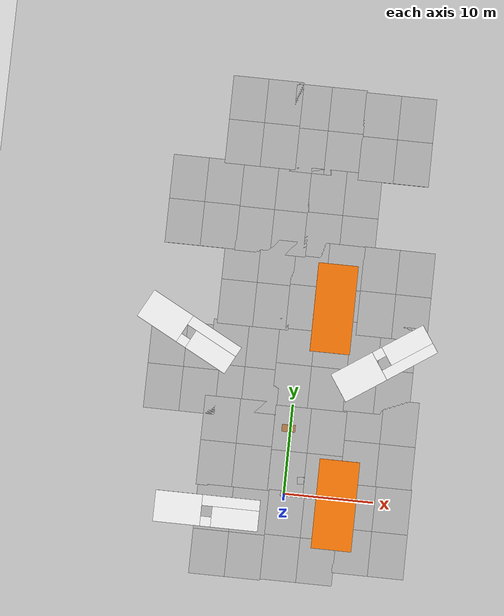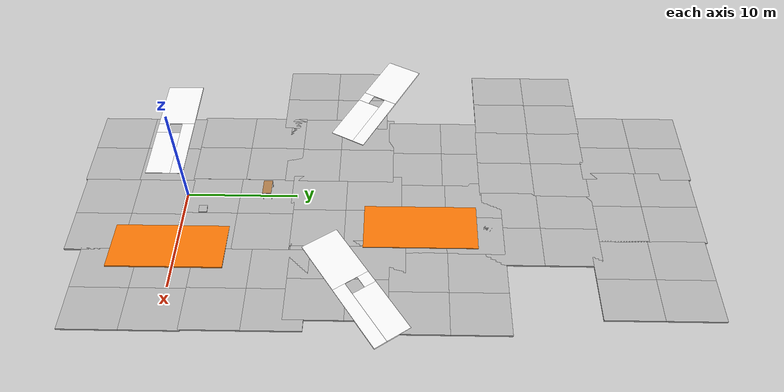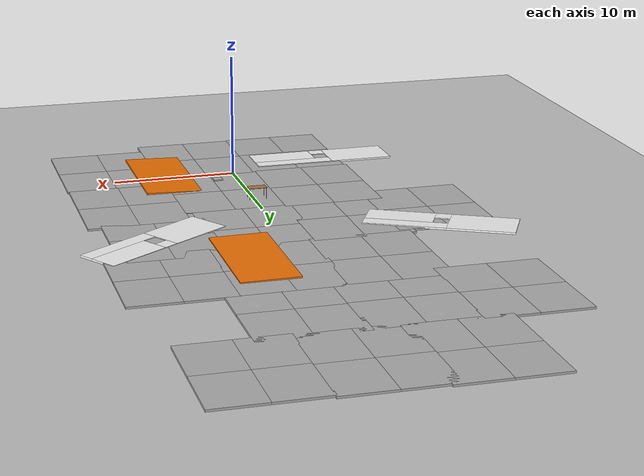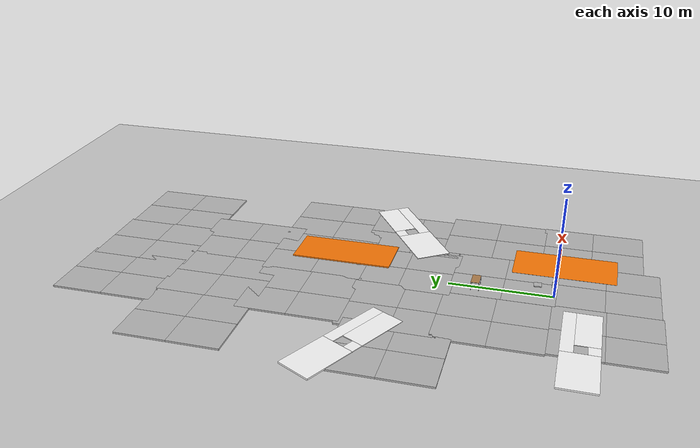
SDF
<sdf version="1.5">
 <world name="default">
  <model name="ground_plane">
   <static>1</static>
   <link name="link">
    <collision name="collision">
     <geometry><plane><normal>0 0 1</normal><size>100 100</size></plane></geometry>
     <surface><friction><ode><mu>100</mu><mu2>50</mu2></ode></friction></surface>
    </collision>
    <visual name="visual">
     <cast_shadows>0</cast_shadows>
     <geometry><plane><normal>0 0 1</normal><size>100 100</size></plane></geometry>
     <material>
      <script><uri>file://media/materials/scripts/gazebo.material</uri><name>Gazebo/Grey</name></script>
     </material>
    </visual>
   </link>
  </model>
  <model name="mud_box">
   <static>1</static>
   <link name="link">
    <collision name="collision"><geometry><box><size>8 10 0.2</size></box></geometry></collision>
    <visual name="visual_1">
     <pose>-2 2.5 0 0 -0 0</pose>
     <cast_shadows>0</cast_shadows>
     <geometry><box><size>4 5 0.2</size></box></geometry>
     <material>
      <script>
       <uri>model://mud_box/materials/scripts</uri>
       <uri>model://mud_box/materials/textures</uri>
       <name>vrc/mud</name>
      </script>
     </material>
    </visual>
    <visual name="visual_2">
     <pose>2 2.5 0 0 -0 0</pose>
     <cast_shadows>0</cast_shadows>
     <geometry><box><size>4 5 0.2</size></box></geometry>
     <material>
      <script>
       <uri>model://mud_box/materials/scripts</uri>
       <uri>model://mud_box/materials/textures</uri>
       <name>vrc/mud</name>
      </script>
     </material>
    </visual>
    <visual name="visual_3">
     <pose>2 -2.5 0 0 -0 0</pose>
     <cast_shadows>0</cast_shadows>
     <geometry><box><size>4 5 0.2</size></box></geometry>
     <material>
      <script>
       <uri>model://mud_box/materials/scripts</uri>
       <uri>model://mud_box/materials/textures</uri>
       <name>vrc/mud</name>
      </script>
     </material>
    </visual>
    <visual name="visual_4">
     <pose>-2 -2.5 0 0 -0 0</pose>
     <cast_shadows>0</cast_shadows>
     <geometry><box><size>4 5 0.2</size></box></geometry>
     <material>
      <script>
       <uri>model://mud_box/materials/scripts</uri>
       <uri>model://mud_box/materials/textures</uri>
       <name>vrc/mud</name>
      </script>
     </material>
    </visual>
   </link>
   <pose>-5.68226 -4.79877 0 0 -0 0</pose>
  </model>
  <model name="mud_box_0">
   <static>1</static>
   <link name="link">
    <collision name="collision"><geometry><box><size>8 10 0.2</size></box></geometry></collision>
    <visual name="visual_1">
     <pose>-2 2.5 0 0 -0 0</pose>
     <cast_shadows>0</cast_shadows>
     <geometry><box><size>4 5 0.2</size></box></geometry>
     <material>
      <script>
       <uri>model://mud_box/materials/scripts</uri>
       <uri>model://mud_box/materials/textures</uri>
       <name>vrc/mud</name>
      </script>
     </material>
    </visual>
    <visual name="visual_2">
     <pose>2 2.5 0 0 -0 0</pose>
     <cast_shadows>0</cast_shadows>
     <geometry><box><size>4 5 0.2</size></box></geometry>
     <material>
      <script>
       <uri>model://mud_box/materials/scripts</uri>
       <uri>model://mud_box/materials/textures</uri>
       <name>vrc/mud</name>
      </script>
     </material>
    </visual>
    <visual name="visual_3">
     <pose>2 -2.5 0 0 -0 0</pose>
     <cast_shadows>0</cast_shadows>
     <geometry><box><size>4 5 0.2</size></box></geometry>
     <material>
      <script>
       <uri>model://mud_box/materials/scripts</uri>
       <uri>model://mud_box/materials/textures</uri>
       <name>vrc/mud</name>
      </script>
     </material>
    </visual>
    <visual name="visual_4">
     <pose>-2 -2.5 0 0 -0 0</pose>
     <cast_shadows>0</cast_shadows>
     <geometry><box><size>4 5 0.2</size></box></geometry>
     <material>
      <script>
       <uri>model://mud_box/materials/scripts</uri>
       <uri>model://mud_box/materials/textures</uri>
       <name>vrc/mud</name>
      </script>
     </material>
    </visual>
   </link>
   <pose>-5.88818 5.07948 0 0 -0 0</pose>
  </model>
  <model name="mud_box_3">
   <static>1</static>
   <link name="link">
    <collision name="collision"><geometry><box><size>8 10 0.2</size></box></geometry></collision>
    <visual name="visual_1">
     <pose>-2 2.5 0 0 -0 0</pose>
     <cast_shadows>0</cast_shadows>
     <geometry><box><size>4 5 0.2</size></box></geometry>
     <material>
      <script>
       <uri>model://mud_box/materials/scripts</uri>
       <uri>model://mud_box/materials/textures</uri>
       <name>vrc/mud</name>
      </script>
     </material>
    </visual>
    <visual name="visual_2">
     <pose>2 2.5 0 0 -0 0</pose>
     <cast_shadows>0</cast_shadows>
     <geometry><box><size>4 5 0.2</size></box></geometry>
     <material>
      <script>
       <uri>model://mud_box/materials/scripts</uri>
       <uri>model://mud_box/materials/textures</uri>
       <name>vrc/mud</name>
      </script>
     </material>
    </visual>
    <visual name="visual_3">
     <pose>2 -2.5 0 0 -0 0</pose>
     <cast_shadows>0</cast_shadows>
     <geometry><box><size>4 5 0.2</size></box></geometry>
     <material>
      <script>
       <uri>model://mud_box/materials/scripts</uri>
       <uri>model://mud_box/materials/textures</uri>
       <name>vrc/mud</name>
      </script>
     </material>
    </visual>
    <visual name="visual_4">
     <pose>-2 -2.5 0 0 -0 0</pose>
     <cast_shadows>0</cast_shadows>
     <geometry><box><size>4 5 0.2</size></box></geometry>
     <material>
      <script>
       <uri>model://mud_box/materials/scripts</uri>
       <uri>model://mud_box/materials/textures</uri>
       <name>vrc/mud</name>
      </script>
     </material>
    </visual>
   </link>
   <pose>2.11529 4.79269 0 0 -0 0</pose>
  </model>
  <model name="mud_box_4">
   <static>1</static>
   <link name="link">
    <collision name="collision"><geometry><box><size>8 10 0.2</size></box></geometry></collision>
    <visual name="visual_1">
     <pose>-2 2.5 0 0 -0 0</pose>
     <cast_shadows>0</cast_shadows>
     <geometry><box><size>4 5 0.2</size></box></geometry>
     <material>
      <script>
       <uri>model://mud_box/materials/scripts</uri>
       <uri>model://mud_box/materials/textures</uri>
       <name>vrc/mud</name>
      </script>
     </material>
    </visual>
    <visual name="visual_2">
     <pose>2 2.5 0 0 -0 0</pose>
     <cast_shadows>0</cast_shadows>
     <geometry><box><size>4 5 0.2</size></box></geometry>
     <material>
      <script>
       <uri>model://mud_box/materials/scripts</uri>
       <uri>model://mud_box/materials/textures</uri>
       <name>vrc/mud</name>
      </script>
     </material>
    </visual>
    <visual name="visual_3">
     <pose>2 -2.5 0 0 -0 0</pose>
     <cast_shadows>0</cast_shadows>
     <geometry><box><size>4 5 0.2</size></box></geometry>
     <material>
      <script>
       <uri>model://mud_box/materials/scripts</uri>
       <uri>model://mud_box/materials/textures</uri>
       <name>vrc/mud</name>
      </script>
     </material>
    </visual>
    <visual name="visual_4">
     <pose>-2 -2.5 0 0 -0 0</pose>
     <cast_shadows>0</cast_shadows>
     <geometry><box><size>4 5 0.2</size></box></geometry>
     <material>
      <script>
       <uri>model://mud_box/materials/scripts</uri>
       <uri>model://mud_box/materials/textures</uri>
       <name>vrc/mud</name>
      </script>
     </material>
    </visual>
   </link>
   <pose>10.1818 -3.15087 0 0 -0 0</pose>
  </model>
  <model name="mud_box_5">
   <static>1</static>
   <link name="link">
    <collision name="collision"><geometry><box><size>8 10 0.2</size></box></geometry></collision>
    <visual name="visual_1">
     <pose>-2 2.5 0 0 -0 0</pose>
     <cast_shadows>0</cast_shadows>
     <geometry><box><size>4 5 0.2</size></box></geometry>
     <material>
      <script>
       <uri>model://mud_box/materials/scripts</uri>
       <uri>model://mud_box/materials/textures</uri>
       <name>vrc/mud</name>
      </script>
     </material>
    </visual>
    <visual name="visual_2">
     <pose>2 2.5 0 0 -0 0</pose>
     <cast_shadows>0</cast_shadows>
     <geometry><box><size>4 5 0.2</size></box></geometry>
     <material>
      <script>
       <uri>model://mud_box/materials/scripts</uri>
       <uri>model://mud_box/materials/textures</uri>
       <name>vrc/mud</name>
      </script>
     </material>
    </visual>
    <visual name="visual_3">
     <pose>2 -2.5 0 0 -0 0</pose>
     <cast_shadows>0</cast_shadows>
     <geometry><box><size>4 5 0.2</size></box></geometry>
     <material>
      <script>
       <uri>model://mud_box/materials/scripts</uri>
       <uri>model://mud_box/materials/textures</uri>
       <name>vrc/mud</name>
      </script>
     </material>
    </visual>
    <visual name="visual_4">
     <pose>-2 -2.5 0 0 -0 0</pose>
     <cast_shadows>0</cast_shadows>
     <geometry><box><size>4 5 0.2</size></box></geometry>
     <material>
      <script>
       <uri>model://mud_box/materials/scripts</uri>
       <uri>model://mud_box/materials/textures</uri>
       <name>vrc/mud</name>
      </script>
     </material>
    </visual>
   </link>
   <pose>10.0851 6.64151 0 0 -0 0</pose>
  </model>
  <model name="mud_box_8">
   <static>1</static>
   <link name="link">
    <collision name="collision"><geometry><box><size>8 10 0.2</size></box></geometry></collision>
    <visual name="visual_1">
     <pose>-2 2.5 0 0 -0 0</pose>
     <cast_shadows>0</cast_shadows>
     <geometry><box><size>4 5 0.2</size></box></geometry>
     <material>
      <script>
       <uri>model://mud_box/materials/scripts</uri>
       <uri>model://mud_box/materials/textures</uri>
       <name>vrc/mud</name>
      </script>
     </material>
    </visual>
    <visual name="visual_2">
     <pose>2 2.5 0 0 -0 0</pose>
     <cast_shadows>0</cast_shadows>
     <geometry><box><size>4 5 0.2</size></box></geometry>
     <material>
      <script>
       <uri>model://mud_box/materials/scripts</uri>
       <uri>model://mud_box/materials/textures</uri>
       <name>vrc/mud</name>
      </script>
     </material>
    </visual>
    <visual name="visual_3">
     <pose>2 -2.5 0 0 -0 0</pose>
     <cast_shadows>0</cast_shadows>
     <geometry><box><size>4 5 0.2</size></box></geometry>
     <material>
      <script>
       <uri>model://mud_box/materials/scripts</uri>
       <uri>model://mud_box/materials/textures</uri>
       <name>vrc/mud</name>
      </script>
     </material>
    </visual>
    <visual name="visual_4">
     <pose>-2 -2.5 0 0 -0 0</pose>
     <cast_shadows>0</cast_shadows>
     <geometry><box><size>4 5 0.2</size></box></geometry>
     <material>
      <script>
       <uri>model://mud_box/materials/scripts</uri>
       <uri>model://mud_box/materials/textures</uri>
       <name>vrc/mud</name>
      </script>
     </material>
    </visual>
   </link>
   <pose>2.3135 -4.65178 0 0 -0 0</pose>
  </model>
  <model name="mud_box_12">
   <static>1</static>
   <link name="link">
    <collision name="collision"><geometry><box><size>8 10 0.2</size></box></geometry></collision>
    <visual name="visual_1">
     <pose>-2 2.5 0 0 -0 0</pose>
     <cast_shadows>0</cast_shadows>
     <geometry><box><size>4 5 0.2</size></box></geometry>
     <material>
      <script>
       <uri>model://mud_box/materials/scripts</uri>
       <uri>model://mud_box/materials/textures</uri>
       <name>vrc/mud</name>
      </script>
     </material>
    </visual>
    <visual name="visual_2">
     <pose>2 2.5 0 0 -0 0</pose>
     <cast_shadows>0</cast_shadows>
     <geometry><box><size>4 5 0.2</size></box></geometry>
     <material>
      <script>
       <uri>model://mud_box/materials/scripts</uri>
       <uri>model://mud_box/materials/textures</uri>
       <name>vrc/mud</name>
      </script>
     </material>
    </visual>
    <visual name="visual_3">
     <pose>2 -2.5 0 0 -0 0</pose>
     <cast_shadows>0</cast_shadows>
     <geometry><box><size>4 5 0.2</size></box></geometry>
     <material>
      <script>
       <uri>model://mud_box/materials/scripts</uri>
       <uri>model://mud_box/materials/textures</uri>
       <name>vrc/mud</name>
      </script>
     </material>
    </visual>
    <visual name="visual_4">
     <pose>-2 -2.5 0 0 -0 0</pose>
     <cast_shadows>0</cast_shadows>
     <geometry><box><size>4 5 0.2</size></box></geometry>
     <material>
      <script>
       <uri>model://mud_box/materials/scripts</uri>
       <uri>model://mud_box/materials/textures</uri>
       <name>vrc/mud</name>
      </script>
     </material>
    </visual>
   </link>
   <pose>9.03571 14.9161 0 0 -0 0</pose>
  </model>
  <model name="mud_box_13">
   <static>1</static>
   <link name="link">
    <collision name="collision"><geometry><box><size>8 10 0.2</size></box></geometry></collision>
    <visual name="visual_1">
     <pose>-2 2.5 0 0 -0 0</pose>
     <cast_shadows>0</cast_shadows>
     <geometry><box><size>4 5 0.2</size></box></geometry>
     <material>
      <script>
       <uri>model://mud_box/materials/scripts</uri>
       <uri>model://mud_box/materials/textures</uri>
       <name>vrc/mud</name>
      </script>
     </material>
    </visual>
    <visual name="visual_2">
     <pose>2 2.5 0 0 -0 0</pose>
     <cast_shadows>0</cast_shadows>
     <geometry><box><size>4 5 0.2</size></box></geometry>
     <material>
      <script>
       <uri>model://mud_box/materials/scripts</uri>
       <uri>model://mud_box/materials/textures</uri>
       <name>vrc/mud</name>
      </script>
     </material>
    </visual>
    <visual name="visual_3">
     <pose>2 -2.5 0 0 -0 0</pose>
     <cast_shadows>0</cast_shadows>
     <geometry><box><size>4 5 0.2</size></box></geometry>
     <material>
      <script>
       <uri>model://mud_box/materials/scripts</uri>
       <uri>model://mud_box/materials/textures</uri>
       <name>vrc/mud</name>
      </script>
     </material>
    </visual>
    <visual name="visual_4">
     <pose>-2 -2.5 0 0 -0 0</pose>
     <cast_shadows>0</cast_shadows>
     <geometry><box><size>4 5 0.2</size></box></geometry>
     <material>
      <script>
       <uri>model://mud_box/materials/scripts</uri>
       <uri>model://mud_box/materials/textures</uri>
       <name>vrc/mud</name>
      </script>
     </material>
    </visual>
   </link>
   <pose>1.62983 14.5106 0 0 -0 0</pose>
  </model>
  <model name="mud_box_14">
   <static>1</static>
   <link name="link">
    <collision name="collision"><geometry><box><size>8 10 0.2</size></box></geometry></collision>
    <visual name="visual_1">
     <pose>-2 2.5 0 0 -0 0</pose>
     <cast_shadows>0</cast_shadows>
     <geometry><box><size>4 5 0.2</size></box></geometry>
     <material>
      <script>
       <uri>model://mud_box/materials/scripts</uri>
       <uri>model://mud_box/materials/textures</uri>
       <name>vrc/mud</name>
      </script>
     </material>
    </visual>
    <visual name="visual_2">
     <pose>2 2.5 0 0 -0 0</pose>
     <cast_shadows>0</cast_shadows>
     <geometry><box><size>4 5 0.2</size></box></geometry>
     <material>
      <script>
       <uri>model://mud_box/materials/scripts</uri>
       <uri>model://mud_box/materials/textures</uri>
       <name>vrc/mud</name>
      </script>
     </material>
    </visual>
    <visual name="visual_3">
     <pose>2 -2.5 0 0 -0 0</pose>
     <cast_shadows>0</cast_shadows>
     <geometry><box><size>4 5 0.2</size></box></geometry>
     <material>
      <script>
       <uri>model://mud_box/materials/scripts</uri>
       <uri>model://mud_box/materials/textures</uri>
       <name>vrc/mud</name>
      </script>
     </material>
    </visual>
    <visual name="visual_4">
     <pose>-2 -2.5 0 0 -0 0</pose>
     <cast_shadows>0</cast_shadows>
     <geometry><box><size>4 5 0.2</size></box></geometry>
     <material>
      <script>
       <uri>model://mud_box/materials/scripts</uri>
       <uri>model://mud_box/materials/textures</uri>
       <name>vrc/mud</name>
      </script>
     </material>
    </visual>
   </link>
   <pose>-5.79195 13.6955 0 0 -0 0</pose>
  </model>
  <model name="mud_box_15">
   <static>1</static>
   <link name="link">
    <collision name="collision"><geometry><box><size>8 10 0.2</size></box></geometry></collision>
    <visual name="visual_1">
     <pose>-2 2.5 0 0 -0 0</pose>
     <cast_shadows>0</cast_shadows>
     <geometry><box><size>4 5 0.2</size></box></geometry>
     <material>
      <script>
       <uri>model://mud_box/materials/scripts</uri>
       <uri>model://mud_box/materials/textures</uri>
       <name>vrc/mud</name>
      </script>
     </material>
    </visual>
    <visual name="visual_2">
     <pose>2 2.5 0 0 -0 0</pose>
     <cast_shadows>0</cast_shadows>
     <geometry><box><size>4 5 0.2</size></box></geometry>
     <material>
      <script>
       <uri>model://mud_box/materials/scripts</uri>
       <uri>model://mud_box/materials/textures</uri>
       <name>vrc/mud</name>
      </script>
     </material>
    </visual>
    <visual name="visual_3">
     <pose>2 -2.5 0 0 -0 0</pose>
     <cast_shadows>0</cast_shadows>
     <geometry><box><size>4 5 0.2</size></box></geometry>
     <material>
      <script>
       <uri>model://mud_box/materials/scripts</uri>
       <uri>model://mud_box/materials/textures</uri>
       <name>vrc/mud</name>
      </script>
     </material>
    </visual>
    <visual name="visual_4">
     <pose>-2 -2.5 0 0 -0 0</pose>
     <cast_shadows>0</cast_shadows>
     <geometry><box><size>4 5 0.2</size></box></geometry>
     <material>
      <script>
       <uri>model://mud_box/materials/scripts</uri>
       <uri>model://mud_box/materials/textures</uri>
       <name>vrc/mud</name>
      </script>
     </material>
    </visual>
   </link>
   <pose>-12.6627 13.0185 0 0 -0 0</pose>
  </model>
  <model name="window2_0">
   <pose>-8.39086 -0.992257 0.080248 1.57646 -0 0</pose>
   <link name="Wall_0">
    <visual name="Wall_0_Visual_0">
     <pose>-3.2425 0 1.75 0 -0 0</pose>
     <geometry><box><size>5.265 0.15 3.5</size></box></geometry>
     <material>
      <script>
       <uri>model://window_door/materials/scripts</uri>
       <uri>model://window_door/materials/textures</uri>
       <name>Wall/NiceWall</name>
      </script>
      <ambient>1 1 1 1</ambient>
     </material>
    </visual>
    <collision name="Wall_0_Collision_0">
     <geometry><box><size>5.265 0.15 3.5</size></box></geometry>
     <pose>-3.2425 0 1.75 0 -0 0</pose>
    </collision>
    <visual name="Wall_0_Visual_1">
     <pose>2.6325 0 0.6 0 -0 0</pose>
     <geometry><box><size>6.485 0.15 1.2</size></box></geometry>
     <material>
      <script>
       <uri>model://window_door/materials/scripts</uri>
       <uri>model://window_door/materials/textures</uri>
       <name>Wall/NiceWall</name>
      </script>
      <ambient>1 1 1 1</ambient>
     </material>
    </visual>
    <collision name="Wall_0_Collision_1">
     <geometry><box><size>6.485 0.15 1.2</size></box></geometry>
     <pose>2.6325 0 0.6 0 -0 0</pose>
    </collision>
    <visual name="Wall_0_Visual_2">
     <pose>3.2325 0 2.35 0 -0 0</pose>
     <geometry><box><size>5.285 0.15 2.3</size></box></geometry>
     <material>
      <script>
       <uri>model://window_door/materials/scripts</uri>
       <uri>model://window_door/materials/textures</uri>
       <name>Wall/NiceWall</name>
      </script>
      <ambient>1 1 1 1</ambient>
     </material>
    </visual>
    <collision name="Wall_0_Collision_2">
     <geometry><box><size>5.285 0.15 2.3</size></box></geometry>
     <pose>3.2325 0 2.35 0 -0 0</pose>
    </collision>
    <visual name="Wall_0_Visual_3">
     <pose>-0.01 0 2.95 0 -0 0</pose>
     <geometry><box><size>1.2 0.15 1.1</size></box></geometry>
     <material>
      <script>
       <uri>model://window_door/materials/scripts</uri>
       <uri>model://window_door/materials/textures</uri>
       <name>Wall/NiceWall</name>
      </script>
      <ambient>1 1 1 1</ambient>
     </material>
    </visual>
    <collision name="Wall_0_Collision_3">
     <geometry><box><size>1.2 0.15 1.1</size></box></geometry>
     <pose>-0.01 0 2.95 0 -0 0</pose>
    </collision>
   </link>
   <static>1</static>
  </model>
  <model name="window2_1">
   <pose>10.7008 14.1735 0.086177 -1.57506 0.00287 0.592291</pose>
   <link name="Wall_0">
    <visual name="Wall_0_Visual_0">
     <pose>-3.2425 0 1.75 0 -0 0</pose>
     <geometry><box><size>5.265 0.15 3.5</size></box></geometry>
     <material>
      <script>
       <uri>model://window_door/materials/scripts</uri>
       <uri>model://window_door/materials/textures</uri>
       <name>Wall/NiceWall</name>
      </script>
      <ambient>1 1 1 1</ambient>
     </material>
    </visual>
    <collision name="Wall_0_Collision_0">
     <geometry><box><size>5.265 0.15 3.5</size></box></geometry>
     <pose>-3.2425 0 1.75 0 -0 0</pose>
    </collision>
    <visual name="Wall_0_Visual_1">
     <pose>2.6325 0 0.6 0 -0 0</pose>
     <geometry><box><size>6.485 0.15 1.2</size></box></geometry>
     <material>
      <script>
       <uri>model://window_door/materials/scripts</uri>
       <uri>model://window_door/materials/textures</uri>
       <name>Wall/NiceWall</name>
      </script>
      <ambient>1 1 1 1</ambient>
     </material>
    </visual>
    <collision name="Wall_0_Collision_1">
     <geometry><box><size>6.485 0.15 1.2</size></box></geometry>
     <pose>2.6325 0 0.6 0 -0 0</pose>
    </collision>
    <visual name="Wall_0_Visual_2">
     <pose>3.2325 0 2.35 0 -0 0</pose>
     <geometry><box><size>5.285 0.15 2.3</size></box></geometry>
     <material>
      <script>
       <uri>model://window_door/materials/scripts</uri>
       <uri>model://window_door/materials/textures</uri>
       <name>Wall/NiceWall</name>
      </script>
      <ambient>1 1 1 1</ambient>
     </material>
    </visual>
    <collision name="Wall_0_Collision_2">
     <geometry><box><size>5.285 0.15 2.3</size></box></geometry>
     <pose>3.2325 0 2.35 0 -0 0</pose>
    </collision>
    <visual name="Wall_0_Visual_3">
     <pose>-0.01 0 2.95 0 -0 0</pose>
     <geometry><box><size>1.2 0.15 1.1</size></box></geometry>
     <material>
      <script>
       <uri>model://window_door/materials/scripts</uri>
       <uri>model://window_door/materials/textures</uri>
       <name>Wall/NiceWall</name>
      </script>
      <ambient>1 1 1 1</ambient>
     </material>
    </visual>
    <collision name="Wall_0_Collision_3">
     <geometry><box><size>1.2 0.15 1.1</size></box></geometry>
     <pose>-0.01 0 2.95 0 -0 0</pose>
    </collision>
   </link>
   <static>1</static>
  </model>
  <model name="wall_0">
   <pose>8.10955 -0.669266 0.170192 3.14158 -1.54059 -3.14159</pose>
   <link name="Wall_0">
    <collision name="Wall_0_Collision">
     <geometry><box><size>10 0.15 4.5</size></box></geometry>
     <pose>0 0 2.25 0 -0 0</pose>
    </collision>
    <visual name="Wall_0_Visual">
     <pose>0 0 2.25 0 -0 0</pose>
     <geometry><box><size>10 0.15 4.5</size></box></geometry>
     <material>
      <script>
       <uri>model://wall/materials/scripts</uri>
       <uri>model://wall/materials/textures</uri>
       <name>Wall/NiceWall</name>
      </script>
      <ambient>0.996078 0.47451 0.0196078 1</ambient>
     </material>
    </visual>
    <pose>0 -0 0 0 0 -1.5708</pose>
   </link>
   <static>1</static>
  </model>
  <model name="mud_box_25">
   <static>1</static>
   <link name="link">
    <collision name="collision"><geometry><box><size>8 10 0.2</size></box></geometry></collision>
    <visual name="visual_1">
     <pose>-2 2.5 0 0 -0 0</pose>
     <cast_shadows>0</cast_shadows>
     <geometry><box><size>4 5 0.2</size></box></geometry>
     <material>
      <script>
       <uri>model://mud_box/materials/scripts</uri>
       <uri>model://mud_box/materials/textures</uri>
       <name>vrc/mud</name>
      </script>
     </material>
    </visual>
    <visual name="visual_2">
     <pose>2 2.5 0 0 -0 0</pose>
     <cast_shadows>0</cast_shadows>
     <geometry><box><size>4 5 0.2</size></box></geometry>
     <material>
      <script>
       <uri>model://mud_box/materials/scripts</uri>
       <uri>model://mud_box/materials/textures</uri>
       <name>vrc/mud</name>
      </script>
     </material>
    </visual>
    <visual name="visual_3">
     <pose>2 -2.5 0 0 -0 0</pose>
     <cast_shadows>0</cast_shadows>
     <geometry><box><size>4 5 0.2</size></box></geometry>
     <material>
      <script>
       <uri>model://mud_box/materials/scripts</uri>
       <uri>model://mud_box/materials/textures</uri>
       <name>vrc/mud</name>
      </script>
     </material>
    </visual>
    <visual name="visual_4">
     <pose>-2 -2.5 0 0 -0 0</pose>
     <cast_shadows>0</cast_shadows>
     <geometry><box><size>4 5 0.2</size></box></geometry>
     <material>
      <script>
       <uri>model://mud_box/materials/scripts</uri>
       <uri>model://mud_box/materials/textures</uri>
       <name>vrc/mud</name>
      </script>
     </material>
    </visual>
   </link>
   <pose>-5.41878 23.2581 0 0 -0 0</pose>
  </model>
  <model name="mud_box_26">
   <static>1</static>
   <link name="link">
    <collision name="collision"><geometry><box><size>8 10 0.2</size></box></geometry></collision>
    <visual name="visual_1">
     <pose>-2 2.5 0 0 -0 0</pose>
     <cast_shadows>0</cast_shadows>
     <geometry><box><size>4 5 0.2</size></box></geometry>
     <material>
      <script>
       <uri>model://mud_box/materials/scripts</uri>
       <uri>model://mud_box/materials/textures</uri>
       <name>vrc/mud</name>
      </script>
     </material>
    </visual>
    <visual name="visual_2">
     <pose>2 2.5 0 0 -0 0</pose>
     <cast_shadows>0</cast_shadows>
     <geometry><box><size>4 5 0.2</size></box></geometry>
     <material>
      <script>
       <uri>model://mud_box/materials/scripts</uri>
       <uri>model://mud_box/materials/textures</uri>
       <name>vrc/mud</name>
      </script>
     </material>
    </visual>
    <visual name="visual_3">
     <pose>2 -2.5 0 0 -0 0</pose>
     <cast_shadows>0</cast_shadows>
     <geometry><box><size>4 5 0.2</size></box></geometry>
     <material>
      <script>
       <uri>model://mud_box/materials/scripts</uri>
       <uri>model://mud_box/materials/textures</uri>
       <name>vrc/mud</name>
      </script>
     </material>
    </visual>
    <visual name="visual_4">
     <pose>-2 -2.5 0 0 -0 0</pose>
     <cast_shadows>0</cast_shadows>
     <geometry><box><size>4 5 0.2</size></box></geometry>
     <material>
      <script>
       <uri>model://mud_box/materials/scripts</uri>
       <uri>model://mud_box/materials/textures</uri>
       <name>vrc/mud</name>
      </script>
     </material>
    </visual>
   </link>
   <pose>2.29695 23.4573 0 0 -0 0</pose>
  </model>
  <model name="mud_box_27">
   <static>1</static>
   <link name="link">
    <collision name="collision"><geometry><box><size>8 10 0.2</size></box></geometry></collision>
    <visual name="visual_1">
     <pose>-2 2.5 0 0 -0 0</pose>
     <cast_shadows>0</cast_shadows>
     <geometry><box><size>4 5 0.2</size></box></geometry>
     <material>
      <script>
       <uri>model://mud_box/materials/scripts</uri>
       <uri>model://mud_box/materials/textures</uri>
       <name>vrc/mud</name>
      </script>
     </material>
    </visual>
    <visual name="visual_2">
     <pose>2 2.5 0 0 -0 0</pose>
     <cast_shadows>0</cast_shadows>
     <geometry><box><size>4 5 0.2</size></box></geometry>
     <material>
      <script>
       <uri>model://mud_box/materials/scripts</uri>
       <uri>model://mud_box/materials/textures</uri>
       <name>vrc/mud</name>
      </script>
     </material>
    </visual>
    <visual name="visual_3">
     <pose>2 -2.5 0 0 -0 0</pose>
     <cast_shadows>0</cast_shadows>
     <geometry><box><size>4 5 0.2</size></box></geometry>
     <material>
      <script>
       <uri>model://mud_box/materials/scripts</uri>
       <uri>model://mud_box/materials/textures</uri>
       <name>vrc/mud</name>
      </script>
     </material>
    </visual>
    <visual name="visual_4">
     <pose>-2 -2.5 0 0 -0 0</pose>
     <cast_shadows>0</cast_shadows>
     <geometry><box><size>4 5 0.2</size></box></geometry>
     <material>
      <script>
       <uri>model://mud_box/materials/scripts</uri>
       <uri>model://mud_box/materials/textures</uri>
       <name>vrc/mud</name>
      </script>
     </material>
    </visual>
   </link>
   <pose>10.2203 23.5008 0 0 -0 0</pose>
  </model>
  <model name="mud_box_57">
   <static>1</static>
   <link name="link">
    <collision name="collision"><geometry><box><size>8 10 0.2</size></box></geometry></collision>
    <visual name="visual_1">
     <pose>-2 2.5 0 0 -0 0</pose>
     <cast_shadows>0</cast_shadows>
     <geometry><box><size>4 5 0.2</size></box></geometry>
     <material>
      <script>
       <uri>model://mud_box/materials/scripts</uri>
       <uri>model://mud_box/materials/textures</uri>
       <name>vrc/mud</name>
      </script>
     </material>
    </visual>
    <visual name="visual_2">
     <pose>2 2.5 0 0 -0 0</pose>
     <cast_shadows>0</cast_shadows>
     <geometry><box><size>4 5 0.2</size></box></geometry>
     <material>
      <script>
       <uri>model://mud_box/materials/scripts</uri>
       <uri>model://mud_box/materials/textures</uri>
       <name>vrc/mud</name>
      </script>
     </material>
    </visual>
    <visual name="visual_3">
     <pose>2 -2.5 0 0 -0 0</pose>
     <cast_shadows>0</cast_shadows>
     <geometry><box><size>4 5 0.2</size></box></geometry>
     <material>
      <script>
       <uri>model://mud_box/materials/scripts</uri>
       <uri>model://mud_box/materials/textures</uri>
       <name>vrc/mud</name>
      </script>
     </material>
    </visual>
    <visual name="visual_4">
     <pose>-2 -2.5 0 0 -0 0</pose>
     <cast_shadows>0</cast_shadows>
     <geometry><box><size>4 5 0.2</size></box></geometry>
     <material>
      <script>
       <uri>model://mud_box/materials/scripts</uri>
       <uri>model://mud_box/materials/textures</uri>
       <name>vrc/mud</name>
      </script>
     </material>
    </visual>
   </link>
   <pose>-12.2315 31.7256 0 0 -0 0</pose>
  </model>
  <model name="mud_box_58">
   <static>1</static>
   <link name="link">
    <collision name="collision"><geometry><box><size>8 10 0.2</size></box></geometry></collision>
    <visual name="visual_1">
     <pose>-2 2.5 0 0 -0 0</pose>
     <cast_shadows>0</cast_shadows>
     <geometry><box><size>4 5 0.2</size></box></geometry>
     <material>
      <script>
       <uri>model://mud_box/materials/scripts</uri>
       <uri>model://mud_box/materials/textures</uri>
       <name>vrc/mud</name>
      </script>
     </material>
    </visual>
    <visual name="visual_2">
     <pose>2 2.5 0 0 -0 0</pose>
     <cast_shadows>0</cast_shadows>
     <geometry><box><size>4 5 0.2</size></box></geometry>
     <material>
      <script>
       <uri>model://mud_box/materials/scripts</uri>
       <uri>model://mud_box/materials/textures</uri>
       <name>vrc/mud</name>
      </script>
     </material>
    </visual>
    <visual name="visual_3">
     <pose>2 -2.5 0 0 -0 0</pose>
     <cast_shadows>0</cast_shadows>
     <geometry><box><size>4 5 0.2</size></box></geometry>
     <material>
      <script>
       <uri>model://mud_box/materials/scripts</uri>
       <uri>model://mud_box/materials/textures</uri>
       <name>vrc/mud</name>
      </script>
     </material>
    </visual>
    <visual name="visual_4">
     <pose>-2 -2.5 0 0 -0 0</pose>
     <cast_shadows>0</cast_shadows>
     <geometry><box><size>4 5 0.2</size></box></geometry>
     <material>
      <script>
       <uri>model://mud_box/materials/scripts</uri>
       <uri>model://mud_box/materials/textures</uri>
       <name>vrc/mud</name>
      </script>
     </material>
    </visual>
   </link>
   <pose>-4.31397 31.6367 0 0 -0 0</pose>
  </model>
  <model name="mud_box_59">
   <static>1</static>
   <link name="link">
    <collision name="collision"><geometry><box><size>8 10 0.2</size></box></geometry></collision>
    <visual name="visual_1">
     <pose>-2 2.5 0 0 -0 0</pose>
     <cast_shadows>0</cast_shadows>
     <geometry><box><size>4 5 0.2</size></box></geometry>
     <material>
      <script>
       <uri>model://mud_box/materials/scripts</uri>
       <uri>model://mud_box/materials/textures</uri>
       <name>vrc/mud</name>
      </script>
     </material>
    </visual>
    <visual name="visual_2">
     <pose>2 2.5 0 0 -0 0</pose>
     <cast_shadows>0</cast_shadows>
     <geometry><box><size>4 5 0.2</size></box></geometry>
     <material>
      <script>
       <uri>model://mud_box/materials/scripts</uri>
       <uri>model://mud_box/materials/textures</uri>
       <name>vrc/mud</name>
      </script>
     </material>
    </visual>
    <visual name="visual_3">
     <pose>2 -2.5 0 0 -0 0</pose>
     <cast_shadows>0</cast_shadows>
     <geometry><box><size>4 5 0.2</size></box></geometry>
     <material>
      <script>
       <uri>model://mud_box/materials/scripts</uri>
       <uri>model://mud_box/materials/textures</uri>
       <name>vrc/mud</name>
      </script>
     </material>
    </visual>
    <visual name="visual_4">
     <pose>-2 -2.5 0 0 -0 0</pose>
     <cast_shadows>0</cast_shadows>
     <geometry><box><size>4 5 0.2</size></box></geometry>
     <material>
      <script>
       <uri>model://mud_box/materials/scripts</uri>
       <uri>model://mud_box/materials/textures</uri>
       <name>vrc/mud</name>
      </script>
     </material>
    </visual>
   </link>
   <pose>3.40075 31.7596 0 0 -0 0</pose>
  </model>
  <model name="mud_box_94">
   <static>1</static>
   <link name="link">
    <collision name="collision"><geometry><box><size>8 10 0.2</size></box></geometry></collision>
    <visual name="visual_1">
     <pose>-2 2.5 0 0 -0 0</pose>
     <cast_shadows>0</cast_shadows>
     <geometry><box><size>4 5 0.2</size></box></geometry>
     <material>
      <script>
       <uri>model://mud_box/materials/scripts</uri>
       <uri>model://mud_box/materials/textures</uri>
       <name>vrc/mud</name>
      </script>
     </material>
    </visual>
    <visual name="visual_2">
     <pose>2 2.5 0 0 -0 0</pose>
     <cast_shadows>0</cast_shadows>
     <geometry><box><size>4 5 0.2</size></box></geometry>
     <material>
      <script>
       <uri>model://mud_box/materials/scripts</uri>
       <uri>model://mud_box/materials/textures</uri>
       <name>vrc/mud</name>
      </script>
     </material>
    </visual>
    <visual name="visual_3">
     <pose>2 -2.5 0 0 -0 0</pose>
     <cast_shadows>0</cast_shadows>
     <geometry><box><size>4 5 0.2</size></box></geometry>
     <material>
      <script>
       <uri>model://mud_box/materials/scripts</uri>
       <uri>model://mud_box/materials/textures</uri>
       <name>vrc/mud</name>
      </script>
     </material>
    </visual>
    <visual name="visual_4">
     <pose>-2 -2.5 0 0 -0 0</pose>
     <cast_shadows>0</cast_shadows>
     <geometry><box><size>4 5 0.2</size></box></geometry>
     <material>
      <script>
       <uri>model://mud_box/materials/scripts</uri>
       <uri>model://mud_box/materials/textures</uri>
       <name>vrc/mud</name>
      </script>
     </material>
    </visual>
   </link>
   <pose>8.67838 40.9243 0 0 -0 0</pose>
  </model>
  <model name="mud_box_95">
   <static>1</static>
   <link name="link">
    <collision name="collision"><geometry><box><size>8 10 0.2</size></box></geometry></collision>
    <visual name="visual_1">
     <pose>-2 2.5 0 0 -0 0</pose>
     <cast_shadows>0</cast_shadows>
     <geometry><box><size>4 5 0.2</size></box></geometry>
     <material>
      <script>
       <uri>model://mud_box/materials/scripts</uri>
       <uri>model://mud_box/materials/textures</uri>
       <name>vrc/mud</name>
      </script>
     </material>
    </visual>
    <visual name="visual_2">
     <pose>2 2.5 0 0 -0 0</pose>
     <cast_shadows>0</cast_shadows>
     <geometry><box><size>4 5 0.2</size></box></geometry>
     <material>
      <script>
       <uri>model://mud_box/materials/scripts</uri>
       <uri>model://mud_box/materials/textures</uri>
       <name>vrc/mud</name>
      </script>
     </material>
    </visual>
    <visual name="visual_3">
     <pose>2 -2.5 0 0 -0 0</pose>
     <cast_shadows>0</cast_shadows>
     <geometry><box><size>4 5 0.2</size></box></geometry>
     <material>
      <script>
       <uri>model://mud_box/materials/scripts</uri>
       <uri>model://mud_box/materials/textures</uri>
       <name>vrc/mud</name>
      </script>
     </material>
    </visual>
    <visual name="visual_4">
     <pose>-2 -2.5 0 0 -0 0</pose>
     <cast_shadows>0</cast_shadows>
     <geometry><box><size>4 5 0.2</size></box></geometry>
     <material>
      <script>
       <uri>model://mud_box/materials/scripts</uri>
       <uri>model://mud_box/materials/textures</uri>
       <name>vrc/mud</name>
      </script>
     </material>
    </visual>
   </link>
   <pose>0.782146 41.1378 0 0 -0 0</pose>
  </model>
  <model name="mud_box_96">
   <static>1</static>
   <link name="link">
    <collision name="collision"><geometry><box><size>8 10 0.2</size></box></geometry></collision>
    <visual name="visual_1">
     <pose>-2 2.5 0 0 -0 0</pose>
     <cast_shadows>0</cast_shadows>
     <geometry><box><size>4 5 0.2</size></box></geometry>
     <material>
      <script>
       <uri>model://mud_box/materials/scripts</uri>
       <uri>model://mud_box/materials/textures</uri>
       <name>vrc/mud</name>
      </script>
     </material>
    </visual>
    <visual name="visual_2">
     <pose>2 2.5 0 0 -0 0</pose>
     <cast_shadows>0</cast_shadows>
     <geometry><box><size>4 5 0.2</size></box></geometry>
     <material>
      <script>
       <uri>model://mud_box/materials/scripts</uri>
       <uri>model://mud_box/materials/textures</uri>
       <name>vrc/mud</name>
      </script>
     </material>
    </visual>
    <visual name="visual_3">
     <pose>2 -2.5 0 0 -0 0</pose>
     <cast_shadows>0</cast_shadows>
     <geometry><box><size>4 5 0.2</size></box></geometry>
     <material>
      <script>
       <uri>model://mud_box/materials/scripts</uri>
       <uri>model://mud_box/materials/textures</uri>
       <name>vrc/mud</name>
      </script>
     </material>
    </visual>
    <visual name="visual_4">
     <pose>-2 -2.5 0 0 -0 0</pose>
     <cast_shadows>0</cast_shadows>
     <geometry><box><size>4 5 0.2</size></box></geometry>
     <material>
      <script>
       <uri>model://mud_box/materials/scripts</uri>
       <uri>model://mud_box/materials/textures</uri>
       <name>vrc/mud</name>
      </script>
     </material>
    </visual>
   </link>
   <pose>-6.45034 41.3328 0 0 -0 0</pose>
  </model>
  <model name="window2_2">
   <pose>-11.5843 18.5025 0.114376 1.57661 0.003061 -0.484468</pose>
   <link name="Wall_0">
    <visual name="Wall_0_Visual_0">
     <pose>-3.2425 0 1.75 0 -0 0</pose>
     <geometry><box><size>5.265 0.15 3.5</size></box></geometry>
     <material>
      <script>
       <uri>model://window_door/materials/scripts</uri>
       <uri>model://window_door/materials/textures</uri>
       <name>Wall/NiceWall</name>
      </script>
      <ambient>1 1 1 1</ambient>
     </material>
    </visual>
    <collision name="Wall_0_Collision_0">
     <geometry><box><size>5.265 0.15 3.5</size></box></geometry>
     <pose>-3.2425 0 1.75 0 -0 0</pose>
    </collision>
    <visual name="Wall_0_Visual_1">
     <pose>2.6325 0 0.6 0 -0 0</pose>
     <geometry><box><size>6.485 0.15 1.2</size></box></geometry>
     <material>
      <script>
       <uri>model://window_door/materials/scripts</uri>
       <uri>model://window_door/materials/textures</uri>
       <name>Wall/NiceWall</name>
      </script>
      <ambient>1 1 1 1</ambient>
     </material>
    </visual>
    <collision name="Wall_0_Collision_1">
     <geometry><box><size>6.485 0.15 1.2</size></box></geometry>
     <pose>2.6325 0 0.6 0 -0 0</pose>
    </collision>
    <visual name="Wall_0_Visual_2">
     <pose>3.2325 0 2.35 0 -0 0</pose>
     <geometry><box><size>5.285 0.15 2.3</size></box></geometry>
     <material>
      <script>
       <uri>model://window_door/materials/scripts</uri>
       <uri>model://window_door/materials/textures</uri>
       <name>Wall/NiceWall</name>
      </script>
      <ambient>1 1 1 1</ambient>
     </material>
    </visual>
    <collision name="Wall_0_Collision_2">
     <geometry><box><size>5.285 0.15 2.3</size></box></geometry>
     <pose>3.2325 0 2.35 0 -0 0</pose>
    </collision>
    <visual name="Wall_0_Visual_3">
     <pose>-0.01 0 2.95 0 -0 0</pose>
     <geometry><box><size>1.2 0.15 1.1</size></box></geometry>
     <material>
      <script>
       <uri>model://window_door/materials/scripts</uri>
       <uri>model://window_door/materials/textures</uri>
       <name>Wall/NiceWall</name>
      </script>
      <ambient>1 1 1 1</ambient>
     </material>
    </visual>
    <collision name="Wall_0_Collision_3">
     <geometry><box><size>1.2 0.15 1.1</size></box></geometry>
     <pose>-0.01 0 2.95 0 -0 0</pose>
    </collision>
   </link>
   <static>1</static>
  </model>
  <model name="wall_3">
   <pose>5.74828 21.1908 0.111531 4e-05 -1.56252 -4.3e-05</pose>
   <link name="Wall_0">
    <collision name="Wall_0_Collision">
     <geometry><box><size>10 0.15 4.5</size></box></geometry>
     <pose>0 0 2.25 0 -0 0</pose>
    </collision>
    <visual name="Wall_0_Visual">
     <pose>0 0 2.25 0 -0 0</pose>
     <geometry><box><size>10 0.15 4.5</size></box></geometry>
     <material>
      <script>
       <uri>model://wall/materials/scripts</uri>
       <uri>model://wall/materials/textures</uri>
       <name>Wall/NiceWall</name>
      </script>
      <ambient>0.996078 0.47451 0.0196078 1</ambient>
     </material>
    </visual>
    <pose>0 -0 0 0 0 -1.5708</pose>
   </link>
   <static>1</static>
  </model>
  <model name="table_0">
   <static>1</static>
   <link name="link">
    <collision name="surface">
     <pose>0 0 1 0 -0 0</pose>
     <geometry><box><size>1.5 0.8 0.03</size></box></geometry>
     <surface><friction><ode><mu>0.6</mu><mu2>0.6</mu2></ode></friction></surface>
    </collision>
    <visual name="visual1">
     <pose>0 0 1 0 -0 0</pose>
     <geometry><box><size>1.5 0.8 0.03</size></box></geometry>
     <material>
      <script><uri>file://media/materials/scripts/gazebo.material</uri><name>Gazebo/Wood</name></script>
     </material>
    </visual>
    <collision name="front_left_leg">
     <pose>0.68 0.38 0.5 0 -0 0</pose>
     <geometry><cylinder><radius>0.02</radius><length>1</length></cylinder></geometry>
    </collision>
    <visual name="front_left_leg">
     <pose>0.68 0.38 0.5 0 -0 0</pose>
     <geometry><cylinder><radius>0.02</radius><length>1</length></cylinder></geometry>
     <material>
      <script><uri>file://media/materials/scripts/gazebo.material</uri><name>Gazebo/Grey</name></script>
     </material>
    </visual>
    <collision name="front_right_leg">
     <pose>0.68 -0.38 0.5 0 -0 0</pose>
     <geometry><cylinder><radius>0.02</radius><length>1</length></cylinder></geometry>
    </collision>
    <visual name="front_right_leg">
     <pose>0.68 -0.38 0.5 0 -0 0</pose>
     <geometry><cylinder><radius>0.02</radius><length>1</length></cylinder></geometry>
     <material>
      <script><uri>file://media/materials/scripts/gazebo.material</uri><name>Gazebo/Grey</name></script>
     </material>
    </visual>
    <collision name="back_right_leg">
     <pose>-0.68 -0.38 0.5 0 -0 0</pose>
     <geometry><cylinder><radius>0.02</radius><length>1</length></cylinder></geometry>
    </collision>
    <visual name="back_right_leg">
     <pose>-0.68 -0.38 0.5 0 -0 0</pose>
     <geometry><cylinder><radius>0.02</radius><length>1</length></cylinder></geometry>
     <material>
      <script><uri>file://media/materials/scripts/gazebo.material</uri><name>Gazebo/Grey</name></script>
     </material>
    </visual>
    <collision name="back_left_leg">
     <pose>-0.68 0.38 0.5 0 -0 0</pose>
     <geometry><cylinder><radius>0.02</radius><length>1</length></cylinder></geometry>
    </collision>
    <visual name="back_left_leg">
     <pose>-0.68 0.38 0.5 0 -0 0</pose>
     <geometry><cylinder><radius>0.02</radius><length>1</length></cylinder></geometry>
     <material>
      <script><uri>file://media/materials/scripts/gazebo.material</uri><name>Gazebo/Grey</name></script>
     </material>
    </visual>
   </link>
   <pose>-0.22558 7.34929 0 0 -0 0</pose>
  </model>
  <model name="Big_box_0">
   <link name="link">
    <inertial>
     <mass>40</mass>
     <inertia><ixx>1</ixx><ixy>0</ixy><ixz>0</ixz><iyy>1</iyy><iyz>0</iyz><izz>1</izz></inertia>
    </inertial>
    <visual name="visual">
     <geometry><mesh><uri>model://big_box/meshes/big_box.dae</uri><scale>0.625 0.1 0.5</scale></mesh></geometry>
     <material><shader type="vertex"><normal_map>__default__</normal_map></shader></material>
    </visual>
    <collision name="collision">
     <geometry><box><size>0.73 0.1 0.73</size></box></geometry>
     <surface>
      <friction>
       <ode><mu>1</mu><mu2>1</mu2><fdir1>0 0 0</fdir1><slip1>0</slip1><slip2>0</slip2></ode>
       <torsional>
        <coefficient>1</coefficient>
        <patch_radius>0</patch_radius>
        <surface_radius>0</surface_radius>
        <use_patch_radius>1</use_patch_radius>
        <ode><slip>0</slip></ode>
       </torsional>
      </friction>
      <bounce><restitution_coefficient>0</restitution_coefficient><threshold>1e+06</threshold></bounce>
      <contact>
       <collide_without_contact>0</collide_without_contact>
       <collide_without_contact_bitmask>1</collide_without_contact_bitmask>
       <collide_bitmask>1</collide_bitmask>
       <ode>
        <soft_cfm>0</soft_cfm>
        <soft_erp>0.2</soft_erp>
        <kp>1e+13</kp>
        <kd>1</kd>
        <max_vel>0.1</max_vel>
        <min_depth>0.001</min_depth>
       </ode>
       <bullet>
        <split_impulse>1</split_impulse>
        <split_impulse_penetration_threshold>-0.01</split_impulse_penetration_threshold>
        <soft_cfm>0</soft_cfm>
        <soft_erp>0.2</soft_erp>
        <kp>1e+13</kp>
        <kd>1</kd>
       </bullet>
      </contact>
     </surface>
    </collision>
   </link>
   <static>0</static>
   <pose>1.71031 1.66111 0.149724 1.57087 -0.000717 -3.07236</pose>
  </model>
 </world>
</sdf>
